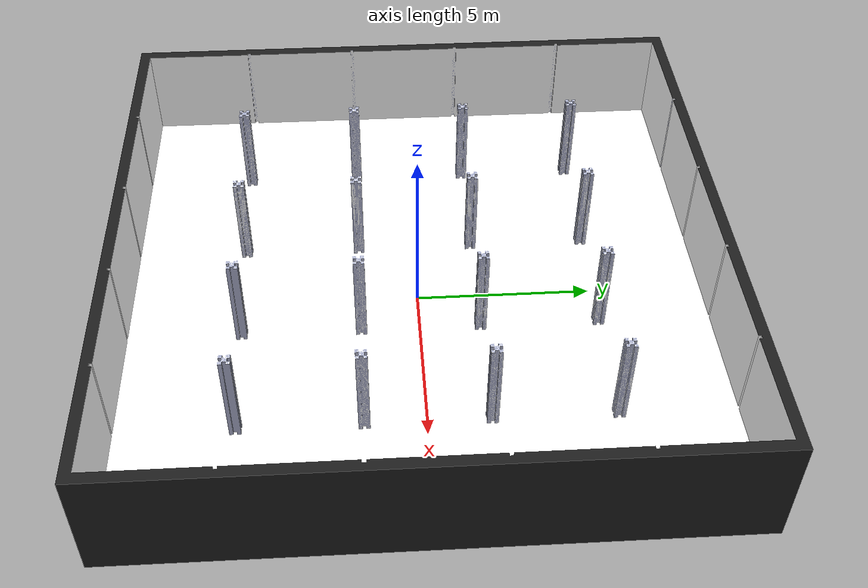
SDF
<?xml version="1.0" ?>
<sdf version="1.6">
  <model name="Apartment1">
    <static>true</static>
    <link name="link">
      <collision name="collision">
        <geometry>
          <mesh>
            <uri>model://robot_field/meshes/model.dae</uri>
            <scale>5 5 2</scale>
          </mesh>
        </geometry>
      </collision>
      <visual name="visual">
        <geometry>
          <mesh>
            <uri>model://robot_field/meshes/model.dae</uri>
            <scale>10 10 30</scale>
          </mesh>
        </geometry>
        <material>
        </material>
      </visual>
    </link>
  </model>
</sdf>
